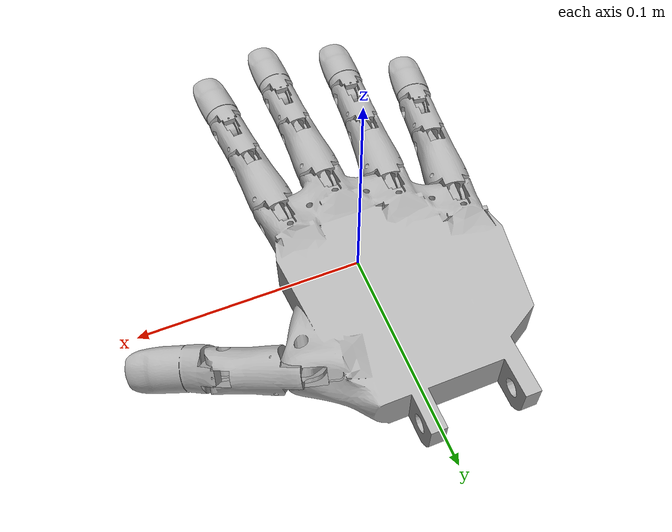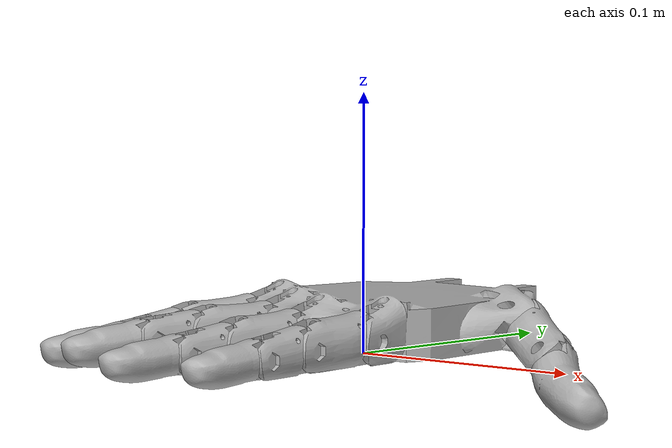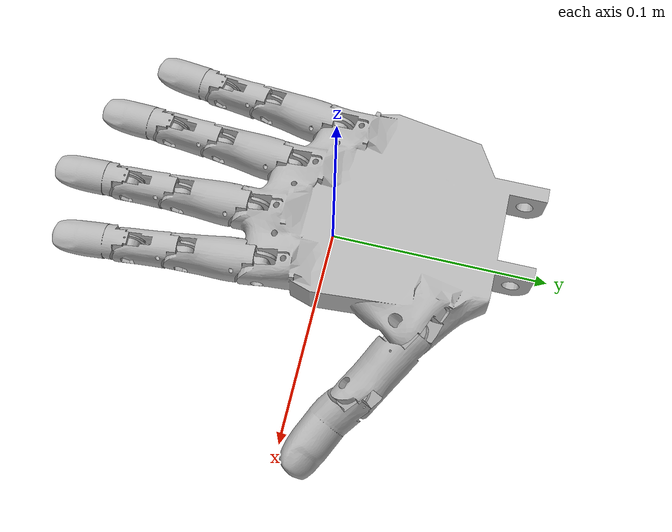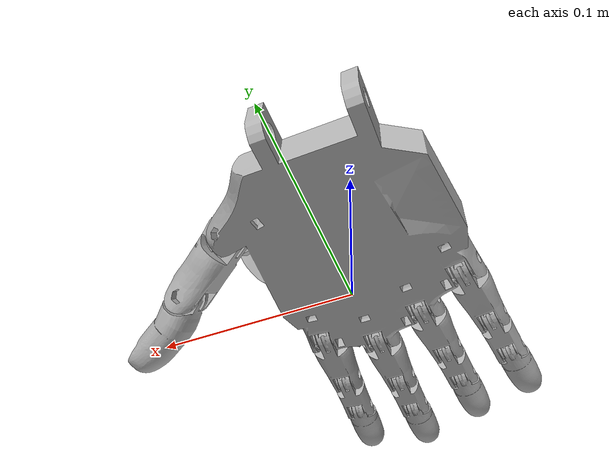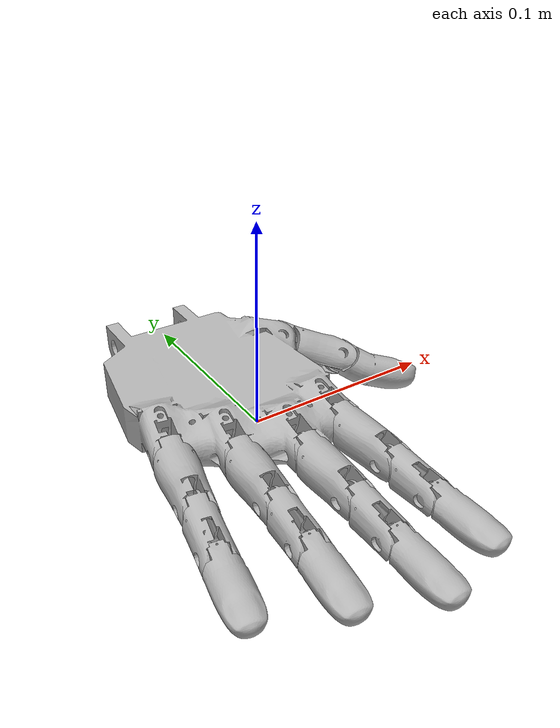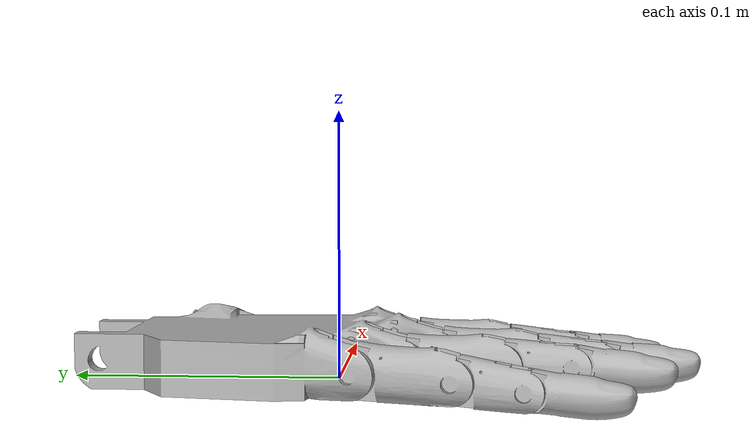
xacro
<?xml version="1.0" ?>
<robot name="Hand" xmlns:xacro="http://www.ros.org/wiki/xacro">

<xacro:include filename="$(find icarus_package)/urdf/materials.xacro" />
<xacro:include filename="$(find icarus_package)/urdf/Hand.trans" />
<xacro:include filename="$(find icarus_package)/urdf/Hand.gazebo" />
<link name="base_link">
  <inertial>
    <origin xyz="0.0 0.0 0.0" rpy="0 0 0"/>
    <mass value="0.0"/>
    <inertia ixx="0.0" iyy="0.0" izz="0.0" ixy="0.0" iyz="0.0" ixz="0.0"/>
  </inertial>
  <visual>
    <origin xyz="0 0 0" rpy="0 0 0"/>
    <geometry>
      <mesh filename="file://$(find icarus_package)/meshes/base_link.stl" scale="0.001 0.001 0.001"/>
    </geometry>
    <material name="silver"/>
  </visual>
  <collision>
    <origin xyz="0 0 0" rpy="0 0 0"/>
    <geometry>
      <mesh filename="file://$(find icarus_package)/meshes/base_link.stl" scale="0.001 0.001 0.001"/>
    </geometry>
  </collision>
</link>

<link name="finger_m1_link_1">
  <inertial>
    <origin xyz="0.016070016877492536 -0.006500509786654653 -0.009126118114694225" rpy="0 0 0"/>
    <mass value="0.06162017006731255"/>
    <inertia ixx="5e-06" iyy="8e-06" izz="9e-06" ixy="3e-06" iyz="-1e-06" ixz="2e-06"/>
  </inertial>
  <visual>
    <origin xyz="-0.041278 -0.041922 -0.013378" rpy="0 0 0"/>
    <geometry>
      <mesh filename="file://$(find icarus_package)/meshes/finger_m1_link_1.stl" scale="0.001 0.001 0.001"/>
    </geometry>
    <material name="silver"/>
  </visual>
  <collision>
    <origin xyz="-0.041278 -0.041922 -0.013378" rpy="0 0 0"/>
    <geometry>
      <mesh filename="file://$(find icarus_package)/meshes/finger_m1_link_1.stl" scale="0.001 0.001 0.001"/>
    </geometry>
  </collision>
</link>

<link name="finger_tip_m1_link_1">
  <inertial>
    <origin xyz="0.0184761664749917 -0.009507344064285661 -0.01020889034206194" rpy="0 0 0"/>
    <mass value="0.08163358314047574"/>
    <inertia ixx="7e-06" iyy="1.1e-05" izz="1.3e-05" ixy="4e-06" iyz="-1e-06" ixz="3e-06"/>
  </inertial>
  <visual>
    <origin xyz="-0.069507 -0.025227 -0.001624" rpy="0 0 0"/>
    <geometry>
      <mesh filename="file://$(find icarus_package)/meshes/finger_tip_m1_link_1.stl" scale="0.001 0.001 0.001"/>
    </geometry>
    <material name="silver"/>
  </visual>
  <collision>
    <origin xyz="-0.069507 -0.025227 -0.001624" rpy="0 0 0"/>
    <geometry>
      <mesh filename="file://$(find icarus_package)/meshes/finger_tip_m1_link_1.stl" scale="0.001 0.001 0.001"/>
    </geometry>
  </collision>
</link>

<link name="finger_bot_m2_link_1">
  <inertial>
    <origin xyz="0.0048001255345838136 -0.01844912473057455 8.130676054260953e-05" rpy="0 0 0"/>
    <mass value="0.05749950589559982"/>
    <inertia ixx="8e-06" iyy="3e-06" izz="8e-06" ixy="0.0" iyz="0.0" ixz="-0.0"/>
  </inertial>
  <visual>
    <origin xyz="-0.021525 0.027684 -0.008937" rpy="0 0 0"/>
    <geometry>
      <mesh filename="file://$(find icarus_package)/meshes/finger_bot_m2_link_1.stl" scale="0.001 0.001 0.001"/>
    </geometry>
    <material name="silver"/>
  </visual>
  <collision>
    <origin xyz="-0.021525 0.027684 -0.008937" rpy="0 0 0"/>
    <geometry>
      <mesh filename="file://$(find icarus_package)/meshes/finger_bot_m2_link_1.stl" scale="0.001 0.001 0.001"/>
    </geometry>
  </collision>
</link>

<link name="finger_top_m2_link_1">
  <inertial>
    <origin xyz="0.004188420745675405 -0.012981208122140611 -0.0008407101466927774" rpy="0 0 0"/>
    <mass value="0.029364178100809595"/>
    <inertia ixx="3e-06" iyy="1e-06" izz="3e-06" ixy="0.0" iyz="-0.0" ixz="0.0"/>
  </inertial>
  <visual>
    <origin xyz="-0.024025 0.06288 -0.00819" rpy="0 0 0"/>
    <geometry>
      <mesh filename="file://$(find icarus_package)/meshes/finger_top_m2_link_1.stl" scale="0.001 0.001 0.001"/>
    </geometry>
    <material name="silver"/>
  </visual>
  <collision>
    <origin xyz="-0.024025 0.06288 -0.00819" rpy="0 0 0"/>
    <geometry>
      <mesh filename="file://$(find icarus_package)/meshes/finger_top_m2_link_1.stl" scale="0.001 0.001 0.001"/>
    </geometry>
  </collision>
</link>

<link name="finger_tip_m2_link_1">
  <inertial>
    <origin xyz="0.004343368315175223 -0.017756989315971597 -0.0010444049066111434" rpy="0 0 0"/>
    <mass value="0.03804848946601954"/>
    <inertia ixx="4e-06" iyy="1e-06" izz="4e-06" ixy="0.0" iyz="-0.0" ixz="0.0"/>
  </inertial>
  <visual>
    <origin xyz="-0.025852 0.087465 -0.007144" rpy="0 0 0"/>
    <geometry>
      <mesh filename="file://$(find icarus_package)/meshes/finger_tip_m2_link_1.stl" scale="0.001 0.001 0.001"/>
    </geometry>
    <material name="silver"/>
  </visual>
  <collision>
    <origin xyz="-0.025852 0.087465 -0.007144" rpy="0 0 0"/>
    <geometry>
      <mesh filename="file://$(find icarus_package)/meshes/finger_tip_m2_link_1.stl" scale="0.001 0.001 0.001"/>
    </geometry>
  </collision>
</link>

<link name="finger_bot_m3_link_1">
  <inertial>
    <origin xyz="0.003414385343644129 -0.018776180579241006 -0.00018833042019554547" rpy="0 0 0"/>
    <mass value="0.05749950589559969"/>
    <inertia ixx="8e-06" iyy="3e-06" izz="8e-06" ixy="0.0" iyz="0.0" ixz="0.0"/>
  </inertial>
  <visual>
    <origin xyz="0.003739 0.036867 -0.009009" rpy="0 0 0"/>
    <geometry>
      <mesh filename="file://$(find icarus_package)/meshes/finger_bot_m3_link_1.stl" scale="0.001 0.001 0.001"/>
    </geometry>
    <material name="silver"/>
  </visual>
  <collision>
    <origin xyz="0.003739 0.036867 -0.009009" rpy="0 0 0"/>
    <geometry>
      <mesh filename="file://$(find icarus_package)/meshes/finger_bot_m3_link_1.stl" scale="0.001 0.001 0.001"/>
    </geometry>
  </collision>
</link>

<link name="finger_top_m3_link_1">
  <inertial>
    <origin xyz="0.003212625270625827 -0.013245387957479107 -0.0005961641669813712" rpy="0 0 0"/>
    <mass value="0.02936417810080959"/>
    <inertia ixx="3e-06" iyy="1e-06" izz="3e-06" ixy="0.0" iyz="0.0" ixz="0.0"/>
  </inertial>
  <visual>
    <origin xyz="0.003863 0.072173 -0.008" rpy="0 0 0"/>
    <geometry>
      <mesh filename="file://$(find icarus_package)/meshes/finger_top_m3_link_1.stl" scale="0.001 0.001 0.001"/>
    </geometry>
    <material name="silver"/>
  </visual>
  <collision>
    <origin xyz="0.003863 0.072173 -0.008" rpy="0 0 0"/>
    <geometry>
      <mesh filename="file://$(find icarus_package)/meshes/finger_top_m3_link_1.stl" scale="0.001 0.001 0.001"/>
    </geometry>
  </collision>
</link>

<link name="finger_tip_m3_link_1">
  <inertial>
    <origin xyz="0.0030115529573035166 -0.01802588282578428 -0.0008441355498918163" rpy="0 0 0"/>
    <mass value="0.03804848946601953"/>
    <inertia ixx="4e-06" iyy="1e-06" izz="4e-06" ixy="0.0" iyz="-0.0" ixz="-0.0"/>
  </inertial>
  <visual>
    <origin xyz="0.003866 0.096816 -0.007399" rpy="0 0 0"/>
    <geometry>
      <mesh filename="file://$(find icarus_package)/meshes/finger_tip_m3_link_1.stl" scale="0.001 0.001 0.001"/>
    </geometry>
    <material name="silver"/>
  </visual>
  <collision>
    <origin xyz="0.003866 0.096816 -0.007399" rpy="0 0 0"/>
    <geometry>
      <mesh filename="file://$(find icarus_package)/meshes/finger_tip_m3_link_1.stl" scale="0.001 0.001 0.001"/>
    </geometry>
  </collision>
</link>

<link name="finger_top_m4_link_1">
  <inertial>
    <origin xyz="0.0018558420016311847 -0.0184427906480917 0.00039393006464263393" rpy="0 0 0"/>
    <mass value="0.05749950589559968"/>
    <inertia ixx="8e-06" iyy="3e-06" izz="8e-06" ixy="-0.0" iyz="0.0" ixz="0.0"/>
  </inertial>
  <visual>
    <origin xyz="0.029955 0.024972 -0.009397" rpy="0 0 0"/>
    <geometry>
      <mesh filename="file://$(find icarus_package)/meshes/finger_top_m4_link_1.stl" scale="0.001 0.001 0.001"/>
    </geometry>
    <material name="silver"/>
  </visual>
  <collision>
    <origin xyz="0.029955 0.024972 -0.009397" rpy="0 0 0"/>
    <geometry>
      <mesh filename="file://$(find icarus_package)/meshes/finger_top_m4_link_1.stl" scale="0.001 0.001 0.001"/>
    </geometry>
  </collision>
</link>

<link name="finger_bot_m4_link_1">
  <inertial>
    <origin xyz="0.00207920001930555 -0.013456295803182021 -3.331291941451736e-05" rpy="0 0 0"/>
    <mass value="0.029364178100809504"/>
    <inertia ixx="3e-06" iyy="1e-06" izz="3e-06" ixy="-0.0" iyz="0.0" ixz="0.0"/>
  </inertial>
  <visual>
    <origin xyz="0.033029 0.059604 -0.009627" rpy="0 0 0"/>
    <geometry>
      <mesh filename="file://$(find icarus_package)/meshes/finger_bot_m4_link_1.stl" scale="0.001 0.001 0.001"/>
    </geometry>
    <material name="silver"/>
  </visual>
  <collision>
    <origin xyz="0.033029 0.059604 -0.009627" rpy="0 0 0"/>
    <geometry>
      <mesh filename="file://$(find icarus_package)/meshes/finger_bot_m4_link_1.stl" scale="0.001 0.001 0.001"/>
    </geometry>
  </collision>
</link>

<link name="finger_tip_m4_link_1">
  <inertial>
    <origin xyz="0.0014703657399842487 -0.018128864251384838 -0.0015991665084065416" rpy="0 0 0"/>
    <mass value="0.03804848946601931"/>
    <inertia ixx="4e-06" iyy="1e-06" izz="4e-06" ixy="-0.0" iyz="-0.0" ixz="-0.0"/>
  </inertial>
  <visual>
    <origin xyz="0.03512 0.084135 -0.010061" rpy="0 0 0"/>
    <geometry>
      <mesh filename="file://$(find icarus_package)/meshes/finger_tip_m4_link_1.stl" scale="0.001 0.001 0.001"/>
    </geometry>
    <material name="silver"/>
  </visual>
  <collision>
    <origin xyz="0.03512 0.084135 -0.010061" rpy="0 0 0"/>
    <geometry>
      <mesh filename="file://$(find icarus_package)/meshes/finger_tip_m4_link_1.stl" scale="0.001 0.001 0.001"/>
    </geometry>
  </collision>
</link>

<link name="finger_bot_m5_link_1">
  <inertial>
    <origin xyz="0.00034283625706488935 -0.018831482741888183 -0.0007311630387505583" rpy="0 0 0"/>
    <mass value="0.05749950589559977"/>
    <inertia ixx="8e-06" iyy="3e-06" izz="8e-06" ixy="-1e-06" iyz="-0.0" ixz="-0.0"/>
  </inertial>
  <visual>
    <origin xyz="0.053965 0.007993 -0.009578" rpy="0 0 0"/>
    <geometry>
      <mesh filename="file://$(find icarus_package)/meshes/finger_bot_m5_link_1.stl" scale="0.001 0.001 0.001"/>
    </geometry>
    <material name="silver"/>
  </visual>
  <collision>
    <origin xyz="0.053965 0.007993 -0.009578" rpy="0 0 0"/>
    <geometry>
      <mesh filename="file://$(find icarus_package)/meshes/finger_bot_m5_link_1.stl" scale="0.001 0.001 0.001"/>
    </geometry>
  </collision>
</link>

<link name="finger_top_m5_link_1">
  <inertial>
    <origin xyz="0.0010130258208710247 -0.013535071888448491 -0.0013741811947472213" rpy="0 0 0"/>
    <mass value="0.02936417810080954"/>
    <inertia ixx="3e-06" iyy="1e-06" izz="3e-06" ixy="-0.0" iyz="-0.0" ixz="-0.0"/>
  </inertial>
  <visual>
    <origin xyz="0.059809 0.042533 -0.007667" rpy="0 0 0"/>
    <geometry>
      <mesh filename="file://$(find icarus_package)/meshes/finger_top_m5_link_1.stl" scale="0.001 0.001 0.001"/>
    </geometry>
    <material name="silver"/>
  </visual>
  <collision>
    <origin xyz="0.059809 0.042533 -0.007667" rpy="0 0 0"/>
    <geometry>
      <mesh filename="file://$(find icarus_package)/meshes/finger_top_m5_link_1.stl" scale="0.001 0.001 0.001"/>
    </geometry>
  </collision>
</link>

<link name="finger_tip_m5_link_1">
  <inertial>
    <origin xyz="3.8575615310065814e-05 -0.018203884649828264 -0.0014154258471049432" rpy="0 0 0"/>
    <mass value="0.03804848946601955"/>
    <inertia ixx="4e-06" iyy="1e-06" izz="4e-06" ixy="-1e-06" iyz="-0.0" ixz="-0.0"/>
  </inertial>
  <visual>
    <origin xyz="0.063829 0.066767 -0.005621" rpy="0 0 0"/>
    <geometry>
      <mesh filename="file://$(find icarus_package)/meshes/finger_tip_m5_link_1.stl" scale="0.001 0.001 0.001"/>
    </geometry>
    <material name="silver"/>
  </visual>
  <collision>
    <origin xyz="0.063829 0.066767 -0.005621" rpy="0 0 0"/>
    <geometry>
      <mesh filename="file://$(find icarus_package)/meshes/finger_tip_m5_link_1.stl" scale="0.001 0.001 0.001"/>
    </geometry>
  </collision>
</link>

<joint name="base_m1_joint" type="revolute">
  <origin xyz="0.041278 0.041922 0.013378" rpy="0 0 0"/>
  <parent link="base_link"/>
  <child link="finger_m1_link_1"/>
  <axis xyz="0.133674 0.687641 -0.713639"/>
  <limit upper="0.785398" lower="0.0" effort="100" velocity="100"/>
</joint>

<joint name="m1_tip_joint" type="revolute">
  <origin xyz="0.028229 -0.016695 -0.011754" rpy="0 0 0"/>
  <parent link="finger_m1_link_1"/>
  <child link="finger_tip_m1_link_1"/>
  <axis xyz="0.133677 0.687641 -0.713639"/>
  <limit upper="1.396263" lower="0.0" effort="100" velocity="100"/>
</joint>

<joint name="base_m2_joint" type="revolute">
  <origin xyz="0.021525 -0.027684 0.008937" rpy="0 0 0"/>
  <parent link="base_link"/>
  <child link="finger_bot_m2_link_1"/>
  <axis xyz="0.997218 0.074343 -0.005494"/>
  <limit upper="1.396263" lower="0.0" effort="100" velocity="100"/>
</joint>

<joint name="m2_bot_joint" type="revolute">
  <origin xyz="0.0025 -0.035196 -0.000747" rpy="0 0 0"/>
  <parent link="finger_bot_m2_link_1"/>
  <child link="finger_top_m2_link_1"/>
  <axis xyz="0.997218 0.07434 -0.005494"/>
  <limit upper="1.48353" lower="0.0" effort="100" velocity="100"/>
</joint>

<joint name="m2_top_tip_joint" type="revolute">
  <origin xyz="0.001827 -0.024585 -0.001046" rpy="0 0 0"/>
  <parent link="finger_top_m2_link_1"/>
  <child link="finger_tip_m2_link_1"/>
  <axis xyz="0.997218 0.074339 -0.005497"/>
  <limit upper="1.396263" lower="0.0" effort="100" velocity="100"/>
</joint>

<joint name="base_m3_joint" type="revolute">
  <origin xyz="-0.003739 -0.036867 0.009009" rpy="0 0 0"/>
  <parent link="base_link"/>
  <child link="finger_bot_m3_link_1"/>
  <axis xyz="0.999983 1.1e-05 -0.005803"/>
  <limit upper="1.396263" lower="0.0" effort="100" velocity="100"/>
</joint>

<joint name="m3_bot_joint" type="revolute">
  <origin xyz="-0.000124 -0.035306 -0.001009" rpy="0 0 0"/>
  <parent link="finger_bot_m3_link_1"/>
  <child link="finger_top_m3_link_1"/>
  <axis xyz="0.999983 8e-06 -0.005803"/>
  <limit upper="1.48353" lower="0.0" effort="100" velocity="100"/>
</joint>

<joint name="m3_top_tip_joint" type="revolute">
  <origin xyz="-3e-06 -0.024643 -0.000601" rpy="0 0 0"/>
  <parent link="finger_top_m3_link_1"/>
  <child link="finger_tip_m3_link_1"/>
  <axis xyz="0.999983 7e-06 -0.005806"/>
  <limit upper="1.396263" lower="0.0" effort="100" velocity="100"/>
</joint>

<joint name="base_m4_joint" type="revolute">
  <origin xyz="-0.029955 -0.024972 0.009397" rpy="0 0 0"/>
  <parent link="base_link"/>
  <child link="finger_top_m4_link_1"/>
  <axis xyz="0.996358 -0.085045 -0.006116"/>
  <limit upper="1.396263" lower="0.0" effort="100" velocity="100"/>
</joint>

<joint name="m4_bot_joint" type="revolute">
  <origin xyz="-0.003074 -0.034632 0.00023" rpy="0 0 0"/>
  <parent link="finger_top_m4_link_1"/>
  <child link="finger_bot_m4_link_1"/>
  <axis xyz="0.996358 -0.085047 -0.006116"/>
  <limit upper="1.48353" lower="0.0" effort="100" velocity="100"/>
</joint>

<joint name="m4_top_tip_joint" type="revolute">
  <origin xyz="-0.002091 -0.024531 0.000434" rpy="0 0 0"/>
  <parent link="finger_bot_m4_link_1"/>
  <child link="finger_tip_m4_link_1"/>
  <axis xyz="0.996358 -0.085049 -0.006119"/>
  <limit upper="1.396263" lower="0.0" effort="100" velocity="100"/>
</joint>

<joint name="base_m5_joint" type="revolute">
  <origin xyz="-0.053965 -0.007993 0.009578" rpy="0 0 0"/>
  <parent link="base_link"/>
  <child link="finger_bot_m5_link_1"/>
  <axis xyz="0.986585 -0.163123 -0.006364"/>
  <limit upper="1.396263" lower="0.0" effort="100" velocity="100"/>
</joint>

<joint name="m5_bot_joint" type="revolute">
  <origin xyz="-0.005844 -0.03454 -0.001911" rpy="0 0 0"/>
  <parent link="finger_bot_m5_link_1"/>
  <child link="finger_top_m5_link_1"/>
  <axis xyz="0.986585 -0.163125 -0.006364"/>
  <limit upper="1.48353" lower="0.0" effort="100" velocity="100"/>
</joint>

<joint name="m5_top_tip_joint" type="revolute">
  <origin xyz="-0.00402 -0.024234 -0.002046" rpy="0 0 0"/>
  <parent link="finger_top_m5_link_1"/>
  <child link="finger_tip_m5_link_1"/>
  <axis xyz="0.986585 -0.163126 -0.006366"/>
  <limit upper="1.396263" lower="0.0" effort="100" velocity="100"/>
</joint>

</robot>

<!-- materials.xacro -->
<robot name="InMoov_Hand" xmlns:xacro="http://www.ros.org/wiki/xacro" >

<material name="silver">
  <color rgba="0.700 0.700 0.700 1.000"/>
</material>

</robot>

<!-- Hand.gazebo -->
<robot name="Hand" xmlns:xacro="http://www.ros.org/wiki/xacro" >

<xacro:property name="body_color" value="Gazebo/Silver" />

<gazebo>
  <plugin name="control" filename="libgazebo_ros_control.so"/>
</gazebo>
<gazebo reference="base_link">
  <material>${body_color}</material>
  <mu1>0.2</mu1>
  <mu2>0.2</mu2>
  <self_collide>true</self_collide>
  <gravity>true</gravity>
</gazebo>

<gazebo reference="finger_m1_link_1">
  <material>${body_color}</material>
  <mu1>0.2</mu1>
  <mu2>0.2</mu2>
  <self_collide>true</self_collide>
</gazebo>

<gazebo reference="finger_tip_m1_link_1">
  <material>${body_color}</material>
  <mu1>0.2</mu1>
  <mu2>0.2</mu2>
  <self_collide>true</self_collide>
</gazebo>

<gazebo reference="finger_bot_m2_link_1">
  <material>${body_color}</material>
  <mu1>0.2</mu1>
  <mu2>0.2</mu2>
  <self_collide>true</self_collide>
</gazebo>

<gazebo reference="finger_top_m2_link_1">
  <material>${body_color}</material>
  <mu1>0.2</mu1>
  <mu2>0.2</mu2>
  <self_collide>true</self_collide>
</gazebo>

<gazebo reference="finger_tip_m2_link_1">
  <material>${body_color}</material>
  <mu1>0.2</mu1>
  <mu2>0.2</mu2>
  <self_collide>true</self_collide>
</gazebo>

<gazebo reference="finger_bot_m3_link_1">
  <material>${body_color}</material>
  <mu1>0.2</mu1>
  <mu2>0.2</mu2>
  <self_collide>true</self_collide>
</gazebo>

<gazebo reference="finger_top_m3_link_1">
  <material>${body_color}</material>
  <mu1>0.2</mu1>
  <mu2>0.2</mu2>
  <self_collide>true</self_collide>
</gazebo>

<gazebo reference="finger_tip_m3_link_1">
  <material>${body_color}</material>
  <mu1>0.2</mu1>
  <mu2>0.2</mu2>
  <self_collide>true</self_collide>
</gazebo>

<gazebo reference="finger_top_m4_link_1">
  <material>${body_color}</material>
  <mu1>0.2</mu1>
  <mu2>0.2</mu2>
  <self_collide>true</self_collide>
</gazebo>

<gazebo reference="finger_bot_m4_link_1">
  <material>${body_color}</material>
  <mu1>0.2</mu1>
  <mu2>0.2</mu2>
  <self_collide>true</self_collide>
</gazebo>

<gazebo reference="finger_tip_m4_link_1">
  <material>${body_color}</material>
  <mu1>0.2</mu1>
  <mu2>0.2</mu2>
  <self_collide>true</self_collide>
</gazebo>

<gazebo reference="finger_bot_m5_link_1">
  <material>${body_color}</material>
  <mu1>0.2</mu1>
  <mu2>0.2</mu2>
  <self_collide>true</self_collide>
</gazebo>

<gazebo reference="finger_top_m5_link_1">
  <material>${body_color}</material>
  <mu1>0.2</mu1>
  <mu2>0.2</mu2>
  <self_collide>true</self_collide>
</gazebo>

<gazebo reference="finger_tip_m5_link_1">
  <material>${body_color}</material>
  <mu1>0.2</mu1>
  <mu2>0.2</mu2>
  <self_collide>true</self_collide>
</gazebo>

</robot>
